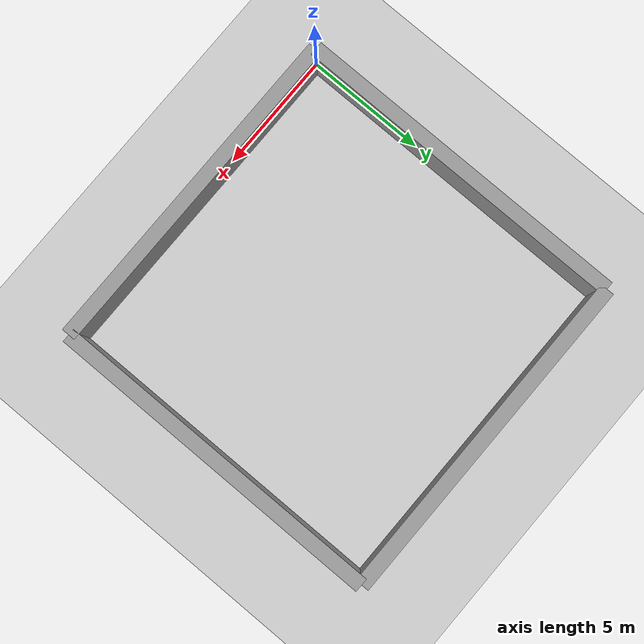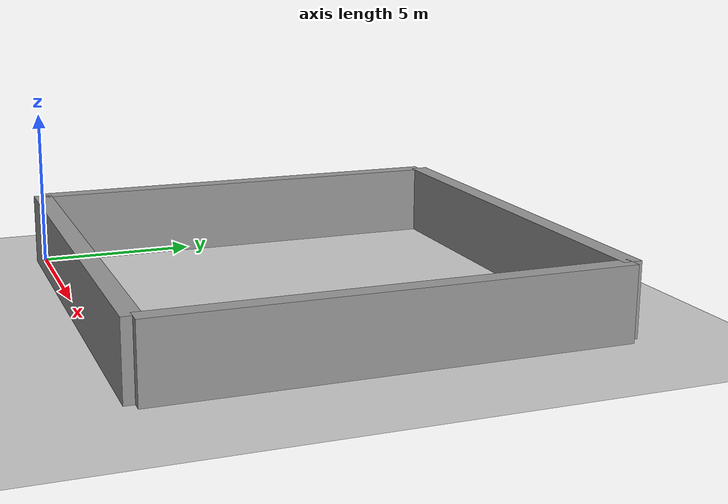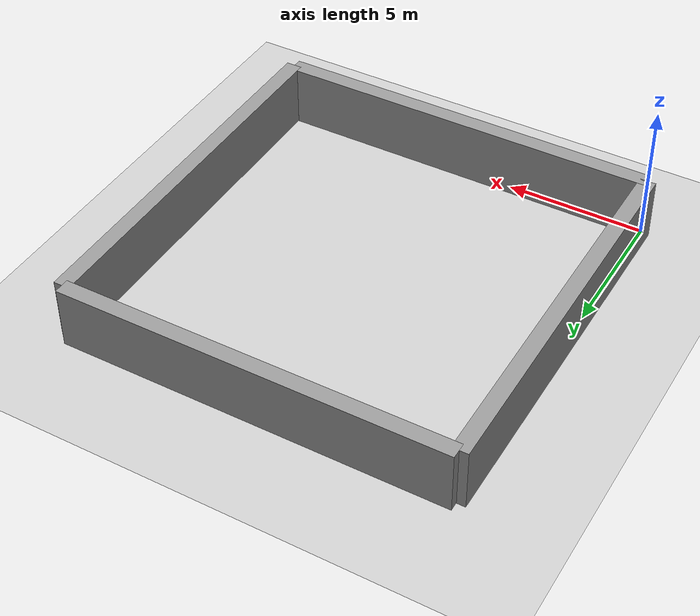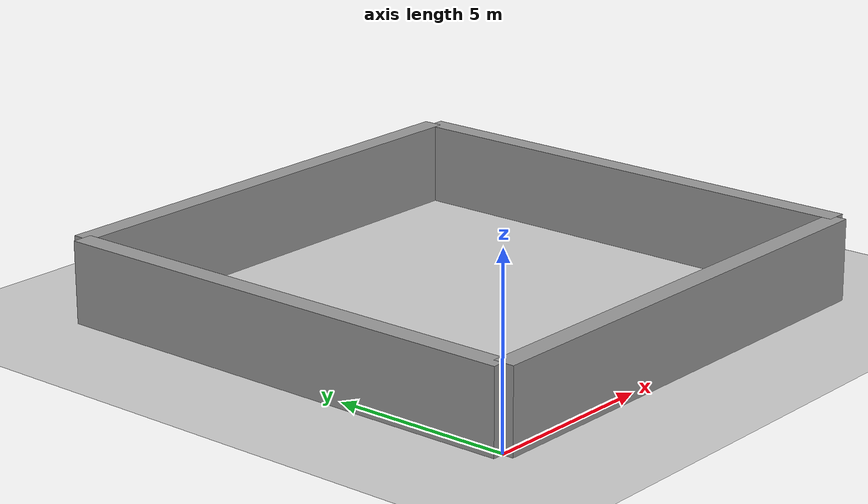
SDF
<sdf version="1.6">
 <world name="default">
  <light name="sun" type="directional">
   <pose>0 0 10 0 -0 0</pose>
   <diffuse>0.8 0.8 0.8 1</diffuse>
   <specular>0.2 0.2 0.2 1</specular>
   <attenuation>
    <range>1000</range>
    <constant>0.9</constant>
    <linear>0.01</linear>
    <quadratic>0.001</quadratic>
   </attenuation>
   <direction>-0.5 0.1 -0.9</direction>
  </light>
  <model name="ground_plane">
   <static>1</static>
   <link name="link">
    <collision name="collision">
     <geometry><plane><normal>0 0 1</normal><size>100 100</size></plane></geometry>
     <surface>
      <contact><collide_bitmask>65535</collide_bitmask></contact>
      <friction><ode><mu>100</mu><mu2>50</mu2></ode></friction>
     </surface>
    </collision>
    <visual name="visual">
     <cast_shadows>0</cast_shadows>
     <geometry><plane><normal>0 0 1</normal><size>100 100</size></plane></geometry>
     <material>
      <script><uri>file://media/materials/scripts/gazebo.material</uri><name>Gazebo/Grey</name></script>
     </material>
    </visual>
   </link>
  </model>
  <physics name="default_physics" default="0" type="ode">
   <ode>
    <solver>
     <type>quick</type>
     <iters>10</iters>
     <sor>1.3</sor>
     <use_dynamic_moi_rescaling>0</use_dynamic_moi_rescaling>
    </solver>
    <constraints>
     <cfm>0</cfm>
     <erp>0.2</erp>
     <contact_max_correcting_vel>100</contact_max_correcting_vel>
     <contact_surface_layer>0.001</contact_surface_layer>
    </constraints>
   </ode>
   <max_step_size>0.002</max_step_size>
   <real_time_factor>1</real_time_factor>
   <real_time_update_rate>500</real_time_update_rate>
  </physics>
  <gravity>0 0 -9.8066</gravity>
  <magnetic_field>6e-06 2.3e-05 -4.2e-05</magnetic_field>
  <atmosphere type="adiabatic"/>
  <scene><ambient>0.4 0.4 0.4 1</ambient><background>0.7 0.7 0.7 1</background><shadows>1</shadows></scene>
  <spherical_coordinates>
   <surface_model>EARTH_WGS84</surface_model>
   <latitude_deg>0</latitude_deg>
   <longitude_deg>0</longitude_deg>
   <elevation>0</elevation>
   <heading_deg>0</heading_deg>
  </spherical_coordinates>
  <model name="south_wall_clone">
   <link name="link">
    <inertial>
     <mass>50</mass>
     <inertia>
      <ixx>0.166667</ixx>
      <ixy>0</ixy>
      <ixz>0</ixz>
      <iyy>0.166667</iyy>
      <iyz>0</iyz>
      <izz>0.166667</izz>
     </inertia>
    </inertial>
    <visual name="visual">
     <geometry><box><size>13.9621 0.579662 2.29626</size></box></geometry>
     <material>
      <script><name>Gazebo/Grey</name><uri>file://media/materials/scripts/gazebo.material</uri></script>
      <ambient>0.3 0.3 0.3 1</ambient>
      <diffuse>0.7 0.7 0.7 1</diffuse>
      <specular>0.01 0.01 0.01 1</specular>
      <emissive>0 0 0 1</emissive>
      <shader type="vertex"><normal_map>__default__</normal_map></shader>
     </material>
    </visual>
    <collision name="collision">
     <geometry><box><size>13.9621 0.579662 2.29626</size></box></geometry>
     <surface>
      <friction>
       <ode><mu>1</mu><mu2>1</mu2><fdir1>0 0 0</fdir1><slip1>0</slip1><slip2>0</slip2></ode>
       <torsional>
        <coefficient>1</coefficient>
        <patch_radius>0</patch_radius>
        <surface_radius>0</surface_radius>
        <use_patch_radius>1</use_patch_radius>
        <ode><slip>0</slip></ode>
       </torsional>
      </friction>
      <bounce><restitution_coefficient>0</restitution_coefficient><threshold>1e+06</threshold></bounce>
      <contact>
       <collide_without_contact>0</collide_without_contact>
       <collide_without_contact_bitmask>1</collide_without_contact_bitmask>
       <collide_bitmask>1</collide_bitmask>
       <ode>
        <soft_cfm>0</soft_cfm>
        <soft_erp>0.2</soft_erp>
        <kp>1e+13</kp>
        <kd>1</kd>
        <max_vel>0.01</max_vel>
        <min_depth>0</min_depth>
       </ode>
       <bullet>
        <split_impulse>1</split_impulse>
        <split_impulse_penetration_threshold>-0.01</split_impulse_penetration_threshold>
        <soft_cfm>0</soft_cfm>
        <soft_erp>0.2</soft_erp>
        <kp>1e+13</kp>
        <kd>1</kd>
       </bullet>
      </contact>
     </surface>
    </collision>
   </link>
   <static>1</static>
   <pose>7 14 1.1 0 -0 0</pose>
  </model>
  <model name="south_wall_clone_0">
   <link name="link">
    <inertial>
     <mass>50</mass>
     <inertia>
      <ixx>0.166667</ixx>
      <ixy>0</ixy>
      <ixz>0</ixz>
      <iyy>0.166667</iyy>
      <iyz>0</iyz>
      <izz>0.166667</izz>
     </inertia>
    </inertial>
    <visual name="visual">
     <geometry><box><size>13.9621 0.579662 2.29626</size></box></geometry>
     <material>
      <script><name>Gazebo/Grey</name><uri>file://media/materials/scripts/gazebo.material</uri></script>
      <ambient>0.3 0.3 0.3 1</ambient>
      <diffuse>0.7 0.7 0.7 1</diffuse>
      <specular>0.01 0.01 0.01 1</specular>
      <emissive>0 0 0 1</emissive>
      <shader type="vertex"><normal_map>__default__</normal_map></shader>
     </material>
    </visual>
    <collision name="collision">
     <geometry><box><size>13.9621 0.579662 2.29626</size></box></geometry>
     <surface>
      <friction>
       <ode><mu>1</mu><mu2>1</mu2><fdir1>0 0 0</fdir1><slip1>0</slip1><slip2>0</slip2></ode>
       <torsional>
        <coefficient>1</coefficient>
        <patch_radius>0</patch_radius>
        <surface_radius>0</surface_radius>
        <use_patch_radius>1</use_patch_radius>
        <ode><slip>0</slip></ode>
       </torsional>
      </friction>
      <bounce><restitution_coefficient>0</restitution_coefficient><threshold>1e+06</threshold></bounce>
      <contact>
       <collide_without_contact>0</collide_without_contact>
       <collide_without_contact_bitmask>1</collide_without_contact_bitmask>
       <collide_bitmask>1</collide_bitmask>
       <ode>
        <soft_cfm>0</soft_cfm>
        <soft_erp>0.2</soft_erp>
        <kp>1e+13</kp>
        <kd>1</kd>
        <max_vel>0.01</max_vel>
        <min_depth>0</min_depth>
       </ode>
       <bullet>
        <split_impulse>1</split_impulse>
        <split_impulse_penetration_threshold>-0.01</split_impulse_penetration_threshold>
        <soft_cfm>0</soft_cfm>
        <soft_erp>0.2</soft_erp>
        <kp>1e+13</kp>
        <kd>1</kd>
       </bullet>
      </contact>
     </surface>
    </collision>
   </link>
   <static>1</static>
   <pose>14 7 1.1 0 -0 1.5708</pose>
  </model>
  <model name="south_wall_clone_1">
   <link name="link">
    <inertial>
     <mass>50</mass>
     <inertia>
      <ixx>0.166667</ixx>
      <ixy>0</ixy>
      <ixz>0</ixz>
      <iyy>0.166667</iyy>
      <iyz>0</iyz>
      <izz>0.166667</izz>
     </inertia>
    </inertial>
    <visual name="visual">
     <geometry><box><size>13.9621 0.579662 2.29626</size></box></geometry>
     <material>
      <script><name>Gazebo/Grey</name><uri>file://media/materials/scripts/gazebo.material</uri></script>
      <ambient>0.3 0.3 0.3 1</ambient>
      <diffuse>0.7 0.7 0.7 1</diffuse>
      <specular>0.01 0.01 0.01 1</specular>
      <emissive>0 0 0 1</emissive>
      <shader type="vertex"><normal_map>__default__</normal_map></shader>
     </material>
    </visual>
    <collision name="collision">
     <geometry><box><size>13.9621 0.579662 2.29626</size></box></geometry>
     <surface>
      <friction>
       <ode><mu>1</mu><mu2>1</mu2><fdir1>0 0 0</fdir1><slip1>0</slip1><slip2>0</slip2></ode>
       <torsional>
        <coefficient>1</coefficient>
        <patch_radius>0</patch_radius>
        <surface_radius>0</surface_radius>
        <use_patch_radius>1</use_patch_radius>
        <ode><slip>0</slip></ode>
       </torsional>
      </friction>
      <bounce><restitution_coefficient>0</restitution_coefficient><threshold>1e+06</threshold></bounce>
      <contact>
       <collide_without_contact>0</collide_without_contact>
       <collide_without_contact_bitmask>1</collide_without_contact_bitmask>
       <collide_bitmask>1</collide_bitmask>
       <ode>
        <soft_cfm>0</soft_cfm>
        <soft_erp>0.2</soft_erp>
        <kp>1e+13</kp>
        <kd>1</kd>
        <max_vel>0.01</max_vel>
        <min_depth>0</min_depth>
       </ode>
       <bullet>
        <split_impulse>1</split_impulse>
        <split_impulse_penetration_threshold>-0.01</split_impulse_penetration_threshold>
        <soft_cfm>0</soft_cfm>
        <soft_erp>0.2</soft_erp>
        <kp>1e+13</kp>
        <kd>1</kd>
       </bullet>
      </contact>
     </surface>
    </collision>
   </link>
   <static>1</static>
   <pose>0 7 1.1 0 -0 1.5708</pose>
  </model>
  <model name="south_wall">
   <link name="link">
    <inertial>
     <mass>50</mass>
     <inertia>
      <ixx>0.166667</ixx>
      <ixy>0</ixy>
      <ixz>0</ixz>
      <iyy>0.166667</iyy>
      <iyz>0</iyz>
      <izz>0.166667</izz>
     </inertia>
    </inertial>
    <visual name="visual">
     <geometry><box><size>13.9621 0.579662 2.29626</size></box></geometry>
     <material>
      <script><name>Gazebo/Grey</name><uri>file://media/materials/scripts/gazebo.material</uri></script>
      <ambient>0.3 0.3 0.3 1</ambient>
      <diffuse>0.7 0.7 0.7 1</diffuse>
      <specular>0.01 0.01 0.01 1</specular>
      <emissive>0 0 0 1</emissive>
      <shader type="vertex"><normal_map>__default__</normal_map></shader>
     </material>
    </visual>
    <collision name="collision">
     <geometry><box><size>13.9621 0.579662 2.29626</size></box></geometry>
     <surface>
      <friction>
       <ode><mu>1</mu><mu2>1</mu2><fdir1>0 0 0</fdir1><slip1>0</slip1><slip2>0</slip2></ode>
       <torsional>
        <coefficient>1</coefficient>
        <patch_radius>0</patch_radius>
        <surface_radius>0</surface_radius>
        <use_patch_radius>1</use_patch_radius>
        <ode><slip>0</slip></ode>
       </torsional>
      </friction>
      <bounce><restitution_coefficient>0</restitution_coefficient><threshold>1e+06</threshold></bounce>
      <contact>
       <collide_without_contact>0</collide_without_contact>
       <collide_without_contact_bitmask>1</collide_without_contact_bitmask>
       <collide_bitmask>1</collide_bitmask>
       <ode>
        <soft_cfm>0</soft_cfm>
        <soft_erp>0.2</soft_erp>
        <kp>1e+13</kp>
        <kd>1</kd>
        <max_vel>0.01</max_vel>
        <min_depth>0</min_depth>
       </ode>
       <bullet>
        <split_impulse>1</split_impulse>
        <split_impulse_penetration_threshold>-0.01</split_impulse_penetration_threshold>
        <soft_cfm>0</soft_cfm>
        <soft_erp>0.2</soft_erp>
        <kp>1e+13</kp>
        <kd>1</kd>
       </bullet>
      </contact>
     </surface>
    </collision>
   </link>
   <static>1</static>
   <pose>7 0 1.1 0 -0 0</pose>
  </model>
 </world>
</sdf>
